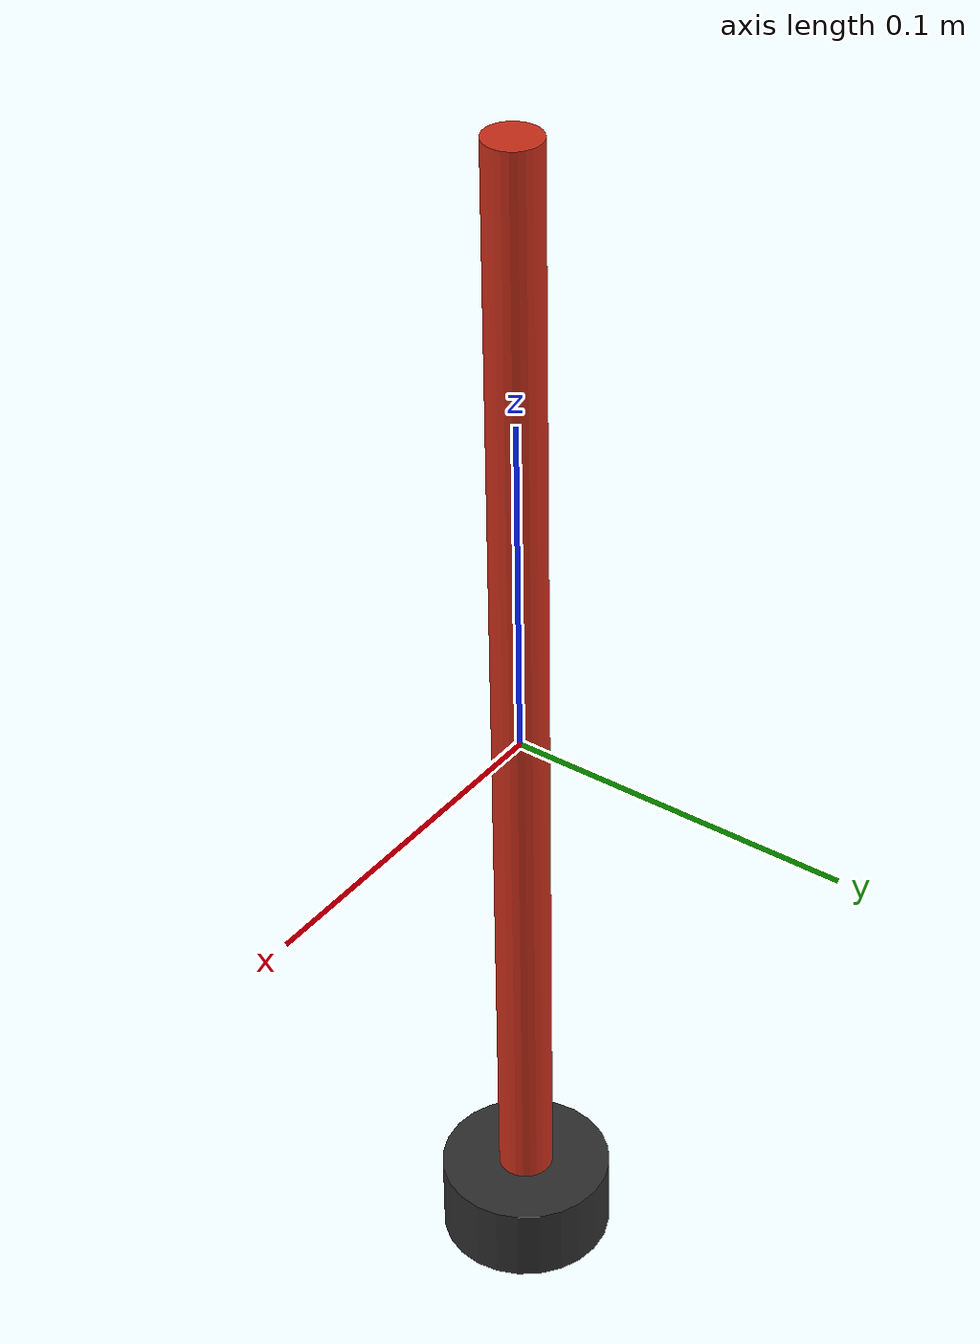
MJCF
<mujoco model="l1b_sweep_post">
  <worldbody>
    <body>
      <body name="object">
        <!-- LIBERO policy cameras render visual group 1. Keep these geoms
             non-colliding so appearance does not duplicate contact mass. -->
        <geom name="post_visual" type="cylinder" pos="0 0 0"
              size="0.008 0.18" contype="0" conaffinity="0"
              rgba="0.80 0.18 0.10 1" group="1"/>
        <geom name="post_base_visual" type="cylinder" pos="0 0 -0.168"
              size="0.025 0.012" contype="0" conaffinity="0"
              rgba="0.18 0.18 0.18 1" group="1"/>
        <geom name="post_collision" type="cylinder" pos="0 0 0"
              size="0.008 0.18" density="40" friction="0.30 0.15 0.03"
              solref="0.005 2.2"
              rgba="0.80 0.18 0.10 1" group="0"/>
        <geom name="post_base" type="cylinder" pos="0 0 -0.168"
              size="0.025 0.012" density="75" friction="0.20 0.15 0.03"
              solref="0.005 2.2"
              rgba="0.18 0.18 0.18 1" group="0"/>
      </body>
      <site rgba="0 0 0 0" size="0.005" pos="0 0 -0.18" name="bottom_site"/>
      <site rgba="0 0 0 0" size="0.005" pos="0 0 0.18" name="top_site"/>
      <site rgba="0 0 0 0" size="0.005" pos="0.025 0 0" name="horizontal_radius_site"/>
    </body>
  </worldbody>
</mujoco>
